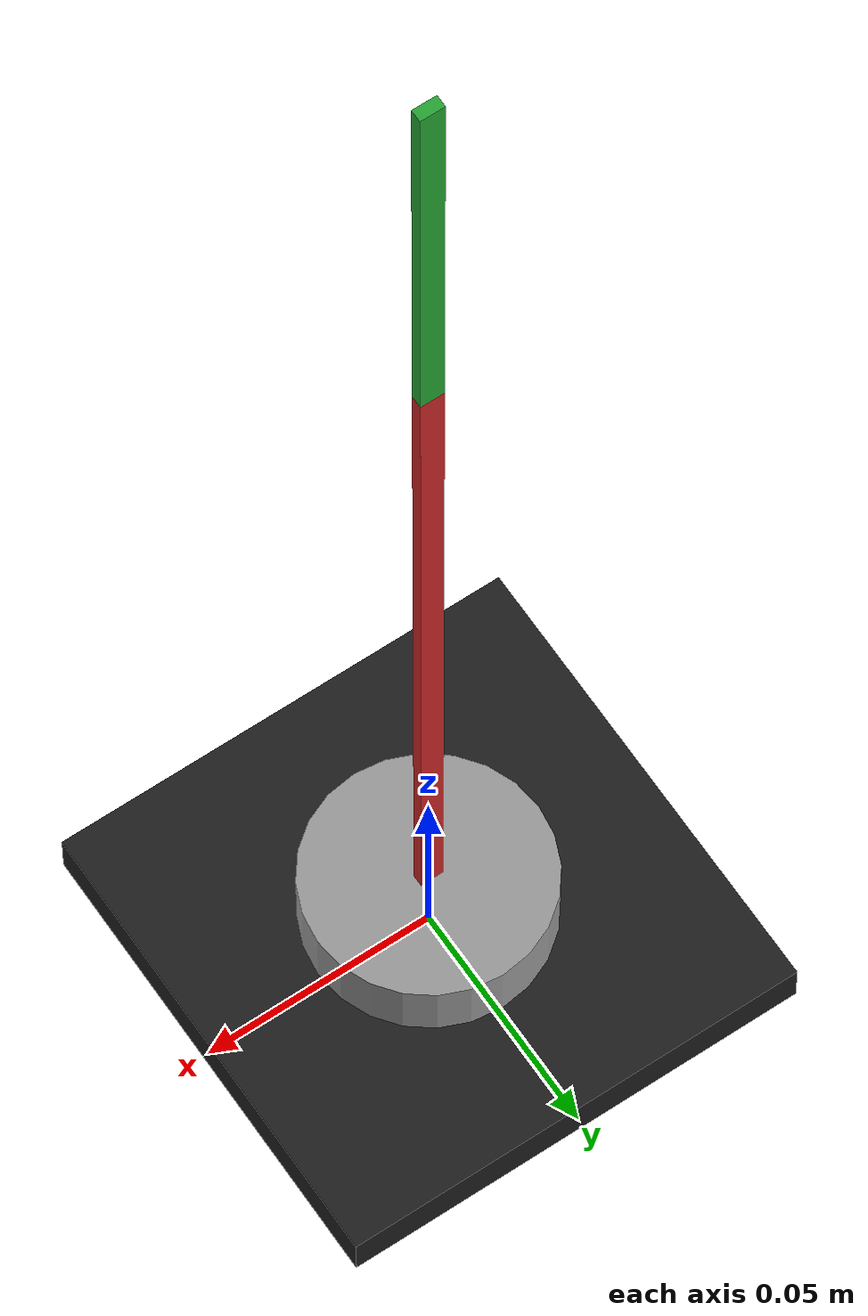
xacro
<?xml version="1.0"?>
<robot name="actuator_2dof" xmlns:xacro="http://www.ros.org/wiki/xacro">

  <!-- Constants for robot dimensions -->
  <xacro:property name="PI" value="3.1415926535897931"/>

  <!-- Import all Gazebo-customization elements, including Gazebo colors -->
  <xacro:include filename="$(find actuator_2dof_description)/urdf/actuator_2dof.gazebo" />
  <!-- Import Rviz colors -->
  <xacro:include filename="$(find actuator_2dof_description)/urdf/materials.xacro" />

  <!-- Used for fixing robot to Gazebo 'base_link' -->
  <link name="world"/>

  <joint name="fixed" type="fixed">
    <parent link="world"/>
    <child link="base_link"/>
  </joint>

  <link name="base_link">
      <visual>
      <geometry>
        <box size="0.1 0.1 0.01"/>
      </geometry>
      <material name="black"/>
    </visual>
    <collision>
      <geometry>
        <box size="0.1 0.1 0.01"/>
      </geometry>
    </collision>
    <inertial>
      <origin xyz="0 0 0" rpy="0 0 0"/>
      <mass value="5.0"/>
      <inertia
        ixx="0.0" ixy="0.0" ixz="0.0"
        iyy="0.0" iyz="0.0"
        izz="0.0"/>
    </inertial>
  </link>

  <link name="rotating_base_link">
    <visual>
      <geometry>
        <cylinder length="0.02" radius="0.025"/>
      </geometry>
      <origin rpy="0 0 0" xyz="0 0 0.005"/>
      <material name="gray"/>
    </visual>
    <collision>
      <geometry>
        <cylinder length="0.02" radius="0.025"/>
      </geometry>
    </collision>
    <inertial>
      <origin xyz="0 0 0" rpy="0 0 0"/>
      <mass value="5.0"/>
      <inertia
        ixx="0.000947917" ixy="0.0" ixz="0.0"
        iyy="0.000947917" iyz="0.0"
        izz="0.0015625"/>
    </inertial>
  </link>

  <link name="rotating_arm_link">
    <visual>
      <geometry>
        <box size="0.005 0.0025 0.2"/>
      </geometry>
      <origin rpy="0 0 0" xyz="0 0 0.1"/>
      <material name="red"/>
    </visual>
    <collision>
      <geometry>
        <box size="0.005 0.0025 0.2"/>
      </geometry>
      <origin rpy="0 0 0" xyz="0 0 0.1"/>
    </collision>
    <inertial>
      <origin xyz="0 0 0" rpy="0 0 0"/>
      <mass value="0.1"/>
      <inertia
        ixx="0.00133333" ixy="0.0" ixz="0.0"
        iyy="0.0" iyz="0.0"
        izz="0.00133333"/>
    </inertial>
  </link>

  <link name="second_arm_link">
    <visual>
      <geometry>
        <box size="0.005 0.0025 0.1"/>
      </geometry>
      <origin rpy="0 0 0" xyz="0 0 0.05"/>
      <material name="green"/>
    </visual>
    <collision>
      <geometry>
        <box size="0.005 0.0025 0.1"/>
      </geometry>
      <origin rpy="0 0 0" xyz="0 0 0.05"/>
    </collision>
    <inertial>
      <origin xyz="0 0 0" rpy="0 0 0"/>
      <mass value="0.05"/>
      <inertia
        ixx="0.00016667" ixy="0.0" ixz="0.0"
        iyy="0.0" iyz="0.0"
        izz="0.00016667"/>
    </inertial>
  </link>

  <joint name="base_revolute_joint" type="continuous">
    <axis rpy="0 0 0" xyz="0 0 1"/>
    <parent link="base_link"/>
    <child link="rotating_base_link"/>
    <origin xyz="0 0 0.005"/>
  </joint>

  <joint name="upper_arm_revolute_joint" type="revolute">
    <axis xyz="1 0 0"/>
    <limit effort="100.0" lower="-1.5708" upper="1.5708" velocity="0.1"/>
    <parent link="rotating_base_link"/>
    <child link="rotating_arm_link"/>
    <origin xyz="0 0 0.01"/>
  </joint>

  <joint name="lower_arm_revolute_joint" type="revolute">
    <axis xyz="1 0 0"/>
    <limit effort="100.0" lower="-1.5708" upper="1.5708" velocity="0.1"/>
    <parent link="rotating_arm_link"/>
    <child link="second_arm_link"/>
    <origin xyz="0 0 0.2"/>
  </joint>

  <transmission name="base_revolute_transmission">
    <type>transmission_interface/SimpleTransmission</type>
    <joint name="base_revolute_joint">
      <hardwareInterface>hardware_interface/EffortJointInterface</hardwareInterface>
    </joint>
    <actuator name="base_revolute_motor">
      <hardwareInterface>hardware_interface/EffortJointInterface</hardwareInterface>
      <mechanicalReduction>1</mechanicalReduction>
    </actuator>
  </transmission>

  <transmission name="upper_arm_revolute_transmission">
    <type>transmission_interface/SimpleTransmission</type>
    <joint name="upper_arm_revolute_joint">
      <hardwareInterface>hardware_interface/EffortJointInterface</hardwareInterface>
    </joint>
    <actuator name="upper_arm_revolute_motor">
      <hardwareInterface>hardware_interface/EffortJointInterface</hardwareInterface>
      <mechanicalReduction>1</mechanicalReduction>
    </actuator>
  </transmission>

  <transmission name="lower_arm_revolute_transmission">
    <type>transmission_interface/SimpleTransmission</type>
    <joint name="lower_arm_revolute_joint">
      <hardwareInterface>hardware_interface/EffortJointInterface</hardwareInterface>
    </joint>
    <actuator name="lower_arm_revolute_motor">
      <hardwareInterface>hardware_interface/EffortJointInterface</hardwareInterface>
      <mechanicalReduction>1</mechanicalReduction>
    </actuator>
  </transmission>

</robot>
